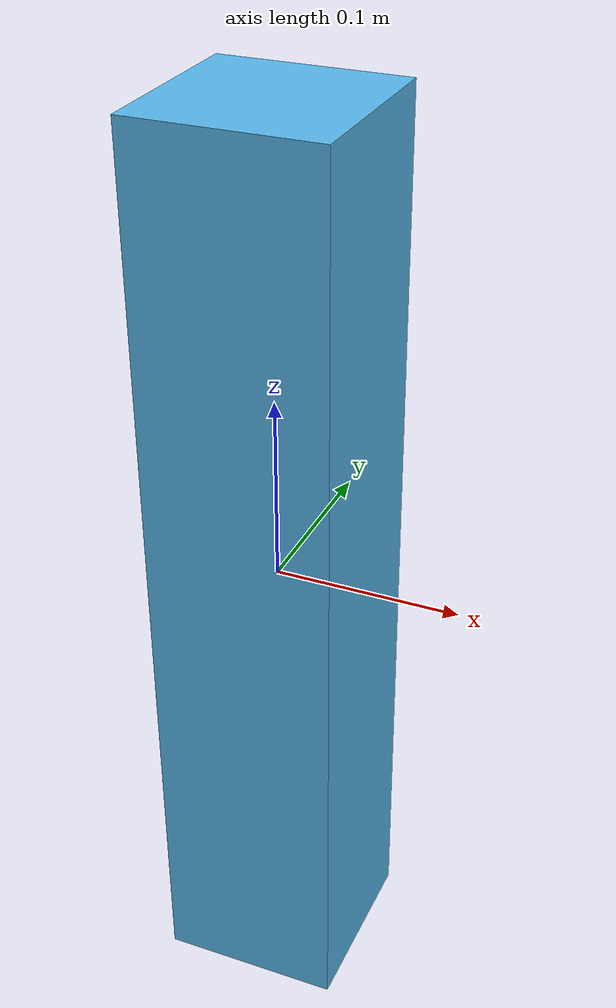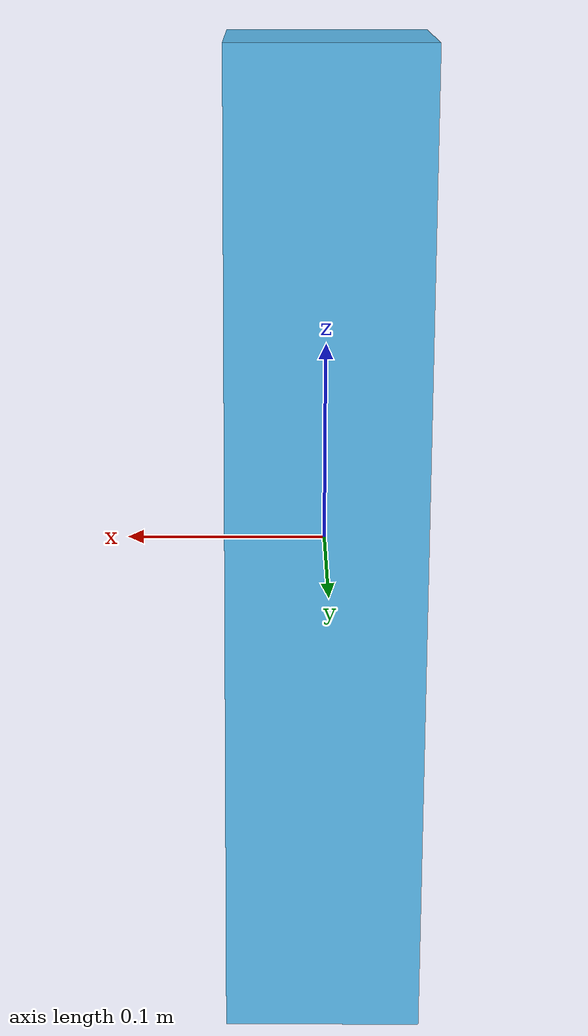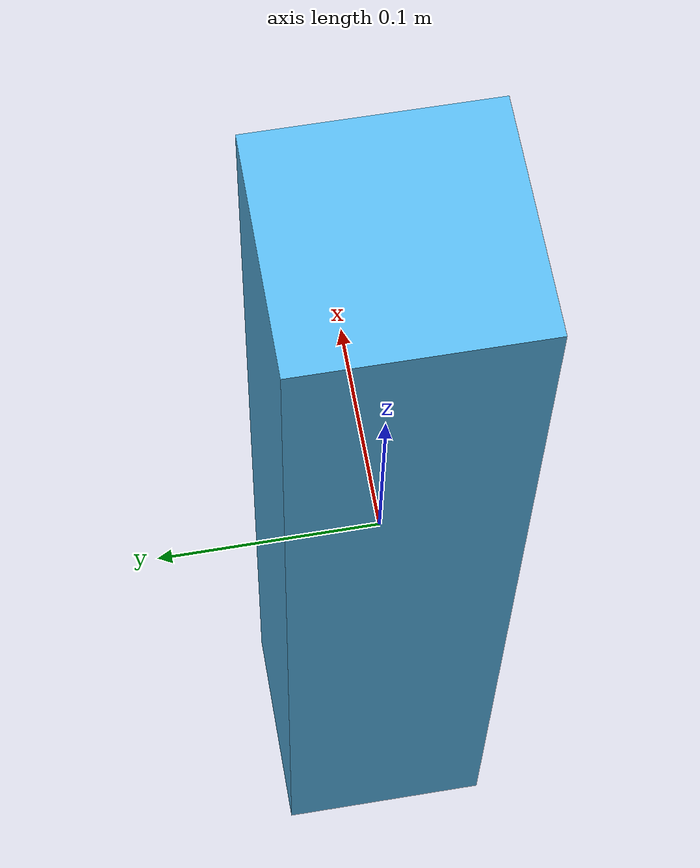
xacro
<?xml version="1.0"?>
<robot xmlns:xacro="http://www.ros.org/wiki/xacro" name="my_robot_arm">

<link name="base_link">
  </link>

  <joint name="base_link_joint" type="fixed">
    <origin rpy="0 0 0" xyz="0 0 0" />
    <parent link="base_link" />
    <child link="Robot_stand" />
  </joint>

  <link name="Robot_stand">
    <visual>
      <geometry>
        <box size="0.1 0.1 0.5"/>
      </geometry>
    </visual>

    <collision>
      <geometry>
        <box size="0.1 0.1 0.5"/>
      </geometry>
    </collision>

    <inertial>
      <mass value="0.7"/>
      <origin rpy="0 0 0" xyz="0 0 0"/>
      <inertia ixx="0.015166666666666665" ixy="0" ixz="0" iyy="0.015166666666666665" iyz="0" izz="0.0011666666666666668"/>
    </inertial>

  </link>

</robot>
